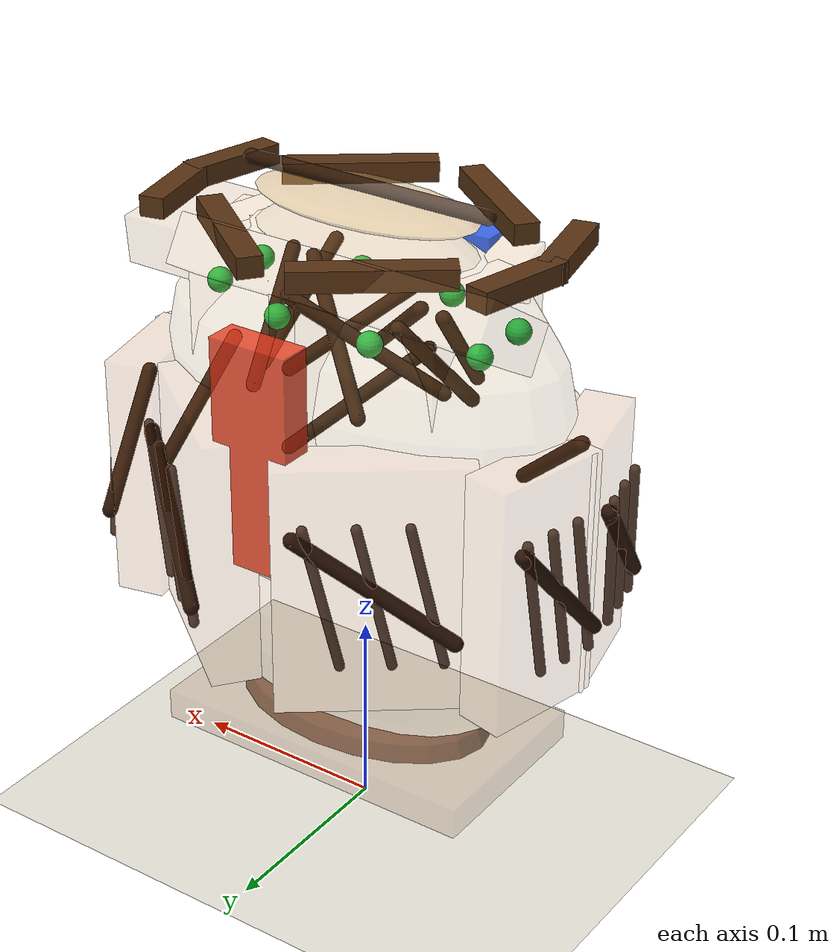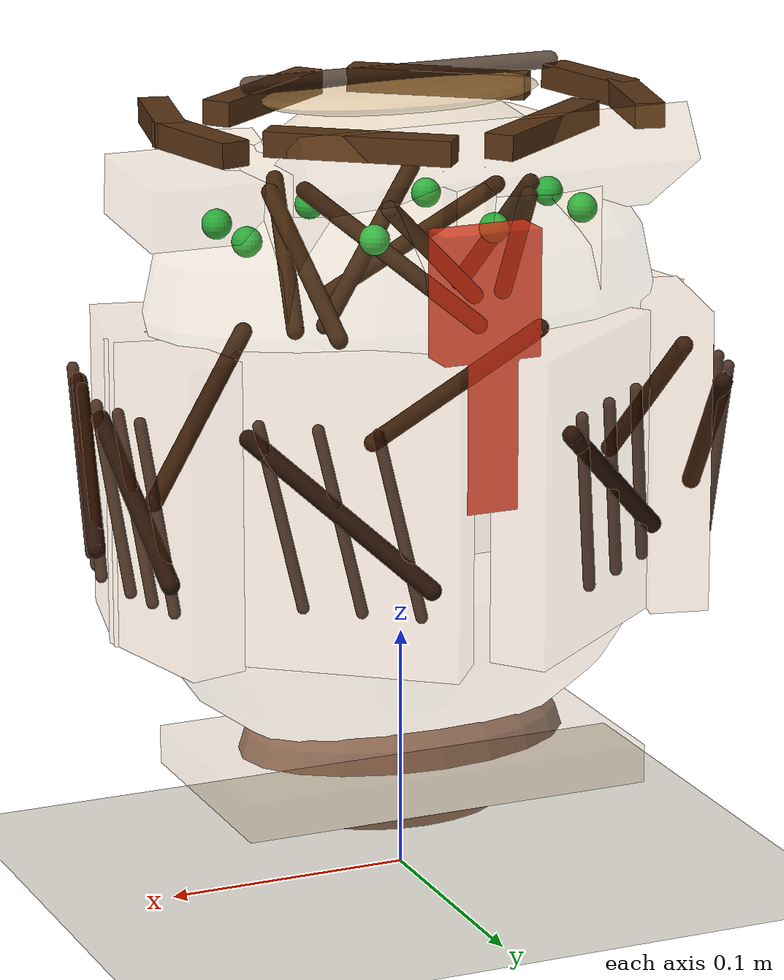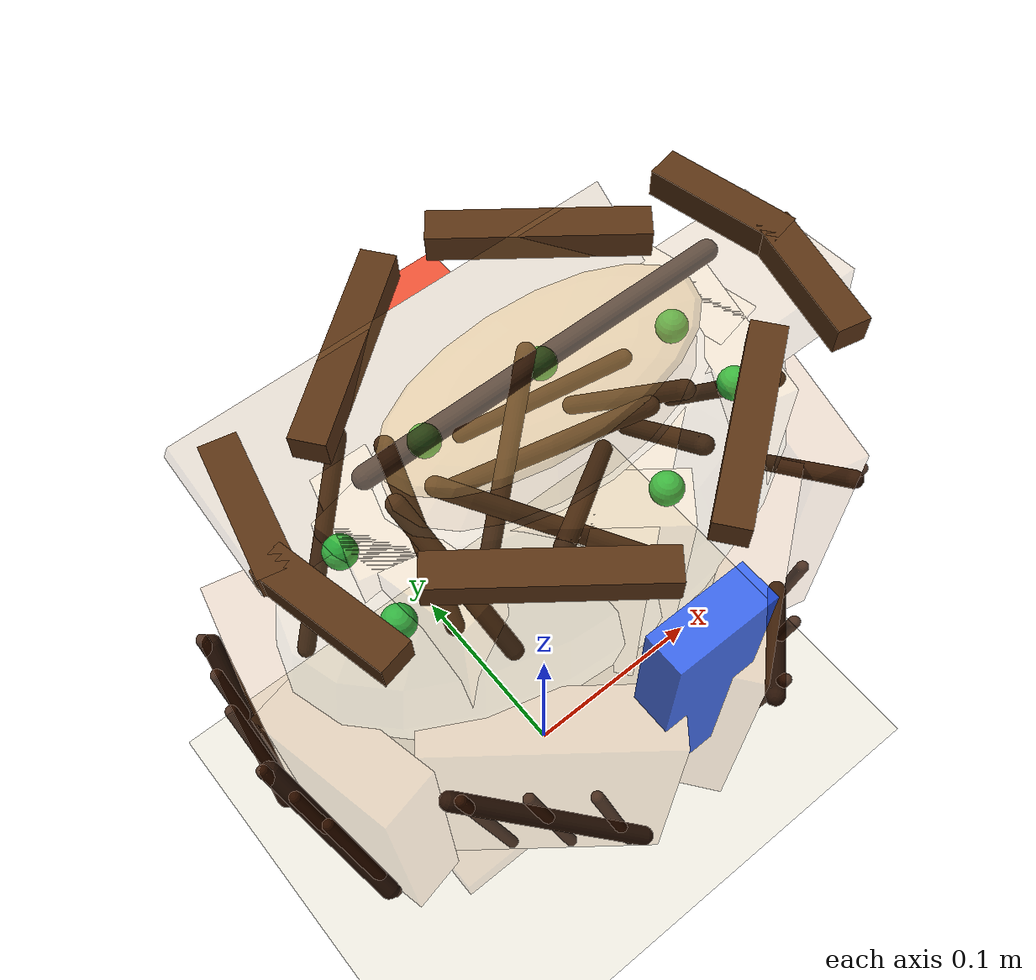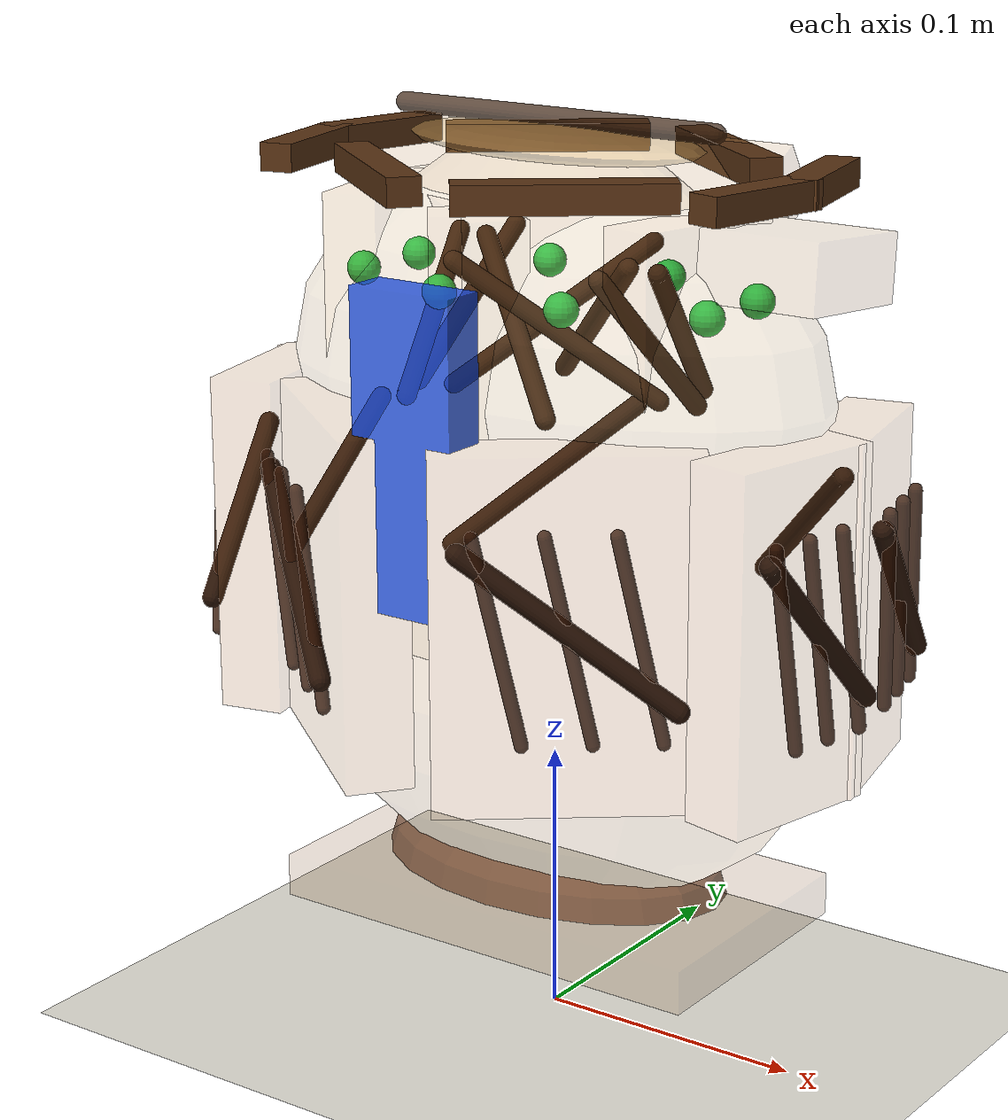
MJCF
<mujoco model="shape_coupled_sack_core_underfilled">
  <compiler angle="degree" autolimits="true" />
  <option timestep="0.001000" gravity="0 0 -9.81" integrator="implicitfast" solver="Newton" iterations="100" ls_iterations="24" jacobian="sparse" cone="elliptic" impratio="4" />
  <size nconmax="900" njmax="1800" />
  <visual>
    <global offwidth="1280" offheight="820" />
  </visual>
  <worldbody>
    <geom friction="1.5 0.05 0.005" condim="4" solref="0.026 1" solimp="0.82 0.96 0.001" name="floor" type="plane" pos="0 0 0" size="2.0 2.0 0.05" rgba="0.91 0.90 0.86 0.18" />
    <light name="key_light" pos="0.4 -0.7 1.5" dir="-0.3 0.4 -1" />
    <camera name="front" pos="0.80 0 0.38" xyaxes="0 1 0 -0.24 0 0.97" />
    <camera name="side" pos="0 -0.78 0.38" xyaxes="1 0 0 0 0.24 0.97" />
    <camera name="overview" pos="0.85 -0.85 0.72" xyaxes="0.72 0.69 0 -0.34 0.35 0.87" />
    <body name="gripper_left_mocap" mocap="true" pos="0 -0.080000 0.230">
      <geom friction="2.3 0.12 0.010" condim="4" solref="0.030 1" solimp="0.78 0.94 0.001" name="gripper_left_mocap_pad" type="box" size="0.020 0.008 0.055" rgba="0.15 0.35 0.95 0.85" />
      <site name="gripper_left_mocap_site" pos="0 0 0" size="0.006" rgba="0.15 0.35 0.95 0.85" />
    </body>
    <body name="gripper_right_mocap" mocap="true" pos="0 0.080000 0.230">
      <geom friction="2.3 0.12 0.010" condim="4" solref="0.030 1" solimp="0.78 0.94 0.001" name="gripper_right_mocap_pad" type="box" size="0.020 0.008 0.055" rgba="0.95 0.25 0.12 0.85" />
      <site name="gripper_right_mocap_site" pos="0 0 0" size="0.006" rgba="0.95 0.25 0.12 0.85" />
    </body>
    <body name="gripper_center_mocap" mocap="true" pos="0 0 0.230">
      <site name="gripper_center_site" pos="0 0 0" size="0.006" rgba="1 1 0 0.8" />
    </body>
    <body name="bag_frame" pos="0 0 0.188">
      <freejoint name="bag_frame_freejoint" />
      <site name="bag_frame_origin" pos="0 0 0" size="0.006" rgba="1 0 0 0.7" />
      <geom friction="1.35 0.08 0.006" condim="4" solref="0.026 1" solimp="0.82 0.96 0.001" name="bag_mouse_handle" type="sphere" pos="0 0 0.020" size="0.020" mass="0.001" rgba="0.10 0.35 1.00 0.24" contype="0" conaffinity="0" />
      <body name="seam_band_00" pos="0.092184 0.020506 0.126000" euler="0 0 102.541136">
        <geom friction="1.35 0.08 0.006" condim="4" solref="0.026 1" solimp="0.82 0.96 0.001" name="seam_band_00_geom" type="box" size="0.024343 0.006000 0.005000" mass="0.016" rgba="0.35 0.20 0.08 0.90" />
        <site name="grasp_seam_00" pos="0 0 0" size="0.005" rgba="1 0.55 0.12 0.90" />
      </body>
      <body name="seam_band_01" pos="0.038184 0.049506 0.126000" euler="0 0 142.357206">
        <geom friction="1.35 0.08 0.006" condim="4" solref="0.026 1" solimp="0.82 0.96 0.001" name="seam_band_01_geom" type="box" size="0.036770 0.006000 0.005000" mass="0.016" rgba="0.35 0.20 0.08 0.90" />
        <site name="grasp_seam_01" pos="0 0 0" size="0.005" rgba="1 0.55 0.12 0.90" />
      </body>
      <body name="seam_band_02" pos="-0.038184 0.049506 0.126000" euler="0 0 217.642794">
        <geom friction="1.35 0.08 0.006" condim="4" solref="0.026 1" solimp="0.82 0.96 0.001" name="seam_band_02_geom" type="box" size="0.036770 0.006000 0.005000" mass="0.016" rgba="0.35 0.20 0.08 0.90" />
        <site name="grasp_seam_02" pos="0 0 0" size="0.005" rgba="1 0.55 0.12 0.90" />
      </body>
      <body name="seam_band_03" pos="-0.092184 0.020506 0.126000" euler="0 0 257.458864">
        <geom friction="1.35 0.08 0.006" condim="4" solref="0.026 1" solimp="0.82 0.96 0.001" name="seam_band_03_geom" type="box" size="0.024343 0.006000 0.005000" mass="0.016" rgba="0.35 0.20 0.08 0.90" />
        <site name="grasp_seam_03" pos="0 0 0" size="0.005" rgba="1 0.55 0.12 0.90" />
      </body>
      <body name="seam_band_04" pos="-0.092184 -0.020506 0.126000" euler="0 0 -77.458864">
        <geom friction="1.35 0.08 0.006" condim="4" solref="0.026 1" solimp="0.82 0.96 0.001" name="seam_band_04_geom" type="box" size="0.024343 0.006000 0.005000" mass="0.016" rgba="0.35 0.20 0.08 0.90" />
        <site name="grasp_seam_04" pos="0 0 0" size="0.005" rgba="1 0.55 0.12 0.90" />
      </body>
      <body name="seam_band_05" pos="-0.038184 -0.049506 0.126000" euler="0 0 -37.642794">
        <geom friction="1.35 0.08 0.006" condim="4" solref="0.026 1" solimp="0.82 0.96 0.001" name="seam_band_05_geom" type="box" size="0.036770 0.006000 0.005000" mass="0.016" rgba="0.35 0.20 0.08 0.90" />
        <site name="grasp_seam_05" pos="0 0 0" size="0.005" rgba="1 0.55 0.12 0.90" />
      </body>
      <body name="seam_band_06" pos="0.038184 -0.049506 0.126000" euler="0 0 37.642794">
        <geom friction="1.35 0.08 0.006" condim="4" solref="0.026 1" solimp="0.82 0.96 0.001" name="seam_band_06_geom" type="box" size="0.036770 0.006000 0.005000" mass="0.016" rgba="0.35 0.20 0.08 0.90" />
        <site name="grasp_seam_06" pos="0 0 0" size="0.005" rgba="1 0.55 0.12 0.90" />
      </body>
      <body name="seam_band_07" pos="0.092184 -0.020506 0.126000" euler="0 0 77.458864">
        <geom friction="1.35 0.08 0.006" condim="4" solref="0.026 1" solimp="0.82 0.96 0.001" name="seam_band_07_geom" type="box" size="0.024343 0.006000 0.005000" mass="0.016" rgba="0.35 0.20 0.08 0.90" />
        <site name="grasp_seam_07" pos="0 0 0" size="0.005" rgba="1 0.55 0.12 0.90" />
      </body>
      <body name="shoulder_panel_00" pos="0.092184 0.020506 0.116000" euler="0 0 102.541136">
        <joint name="shoulder_panel_00_hinge" type="hinge" axis="1 0 0" limited="true" range="-44 52" damping="10.500" stiffness="1.100" />
        <geom friction="1.35 0.08 0.006" condim="4" solref="0.026 1" solimp="0.82 0.96 0.001" name="shoulder_panel_00_geom" type="box" pos="0 0.030000 -0.045000" size="0.029005 0.010000 0.045000" mass="0.030" rgba="0.84 0.58 0.27 0.10" />
        <geom friction="1.35 0.08 0.006" condim="4" solref="0.026 1" solimp="0.82 0.96 0.001" name="shoulder_panel_00_shape_cue" type="capsule" fromto="-0.023307 0.048000 -0.020000 0.023307 0.048000 -0.070000" size="0.0035" mass="0.001" rgba="0.18 0.08 0.02 0.95" contype="0" conaffinity="0" />
        <geom friction="1.35 0.08 0.006" condim="4" solref="0.026 1" solimp="0.82 0.96 0.001" name="shoulder_panel_00_wrinkle_0" type="capsule" fromto="-0.020502 0.050000 -0.018 -0.008502 0.046000 -0.080" size="0.0022" mass="0.0002" rgba="0.24 0.11 0.03 0.82" contype="0" conaffinity="0" />
        <geom friction="1.35 0.08 0.006" condim="4" solref="0.026 1" solimp="0.82 0.96 0.001" name="shoulder_panel_00_wrinkle_1" type="capsule" fromto="-0.006000 0.050000 -0.018 0.006000 0.046000 -0.080" size="0.0022" mass="0.0002" rgba="0.24 0.11 0.03 0.82" contype="0" conaffinity="0" />
        <geom friction="1.35 0.08 0.006" condim="4" solref="0.026 1" solimp="0.82 0.96 0.001" name="shoulder_panel_00_wrinkle_2" type="capsule" fromto="0.008502 0.050000 -0.018 0.020502 0.046000 -0.080" size="0.0022" mass="0.0002" rgba="0.24 0.11 0.03 0.82" contype="0" conaffinity="0" />
        <site name="grasp_shoulder_00" pos="0 0.021000 -0.031500" size="0.006" rgba="0.10 0.75 0.25 0.90" />
      </body>
      <body name="shoulder_panel_01" pos="0.038184 0.049506 0.116000" euler="0 0 142.357206">
        <joint name="shoulder_panel_01_hinge" type="hinge" axis="1 0 0" limited="true" range="-44 52" damping="10.500" stiffness="1.100" />
        <geom friction="1.35 0.08 0.006" condim="4" solref="0.026 1" solimp="0.82 0.96 0.001" name="shoulder_panel_01_geom" type="box" pos="0 0.030000 -0.045000" size="0.043811 0.010000 0.045000" mass="0.030" rgba="0.84 0.58 0.27 0.10" />
        <geom friction="1.35 0.08 0.006" condim="4" solref="0.026 1" solimp="0.82 0.96 0.001" name="shoulder_panel_01_shape_cue" type="capsule" fromto="-0.035205 0.048000 -0.020000 0.035205 0.048000 -0.070000" size="0.0035" mass="0.001" rgba="0.18 0.08 0.02 0.95" contype="0" conaffinity="0" />
        <geom friction="1.35 0.08 0.006" condim="4" solref="0.026 1" solimp="0.82 0.96 0.001" name="shoulder_panel_01_wrinkle_0" type="capsule" fromto="-0.027906 0.050000 -0.018 -0.015906 0.046000 -0.080" size="0.0022" mass="0.0002" rgba="0.24 0.11 0.03 0.82" contype="0" conaffinity="0" />
        <geom friction="1.35 0.08 0.006" condim="4" solref="0.026 1" solimp="0.82 0.96 0.001" name="shoulder_panel_01_wrinkle_1" type="capsule" fromto="-0.006000 0.050000 -0.018 0.006000 0.046000 -0.080" size="0.0022" mass="0.0002" rgba="0.24 0.11 0.03 0.82" contype="0" conaffinity="0" />
        <geom friction="1.35 0.08 0.006" condim="4" solref="0.026 1" solimp="0.82 0.96 0.001" name="shoulder_panel_01_wrinkle_2" type="capsule" fromto="0.015906 0.050000 -0.018 0.027906 0.046000 -0.080" size="0.0022" mass="0.0002" rgba="0.24 0.11 0.03 0.82" contype="0" conaffinity="0" />
        <site name="grasp_shoulder_01" pos="0 0.021000 -0.031500" size="0.006" rgba="0.10 0.75 0.25 0.90" />
      </body>
      <body name="shoulder_panel_02" pos="-0.038184 0.049506 0.116000" euler="0 0 217.642794">
        <joint name="shoulder_panel_02_hinge" type="hinge" axis="1 0 0" limited="true" range="-44 52" damping="10.500" stiffness="1.100" />
        <geom friction="1.35 0.08 0.006" condim="4" solref="0.026 1" solimp="0.82 0.96 0.001" name="shoulder_panel_02_geom" type="box" pos="0 0.030000 -0.045000" size="0.043811 0.010000 0.045000" mass="0.030" rgba="0.84 0.58 0.27 0.10" />
        <geom friction="1.35 0.08 0.006" condim="4" solref="0.026 1" solimp="0.82 0.96 0.001" name="shoulder_panel_02_shape_cue" type="capsule" fromto="-0.035205 0.048000 -0.020000 0.035205 0.048000 -0.070000" size="0.0035" mass="0.001" rgba="0.18 0.08 0.02 0.95" contype="0" conaffinity="0" />
        <geom friction="1.35 0.08 0.006" condim="4" solref="0.026 1" solimp="0.82 0.96 0.001" name="shoulder_panel_02_wrinkle_0" type="capsule" fromto="-0.027906 0.050000 -0.018 -0.015906 0.046000 -0.080" size="0.0022" mass="0.0002" rgba="0.24 0.11 0.03 0.82" contype="0" conaffinity="0" />
        <geom friction="1.35 0.08 0.006" condim="4" solref="0.026 1" solimp="0.82 0.96 0.001" name="shoulder_panel_02_wrinkle_1" type="capsule" fromto="-0.006000 0.050000 -0.018 0.006000 0.046000 -0.080" size="0.0022" mass="0.0002" rgba="0.24 0.11 0.03 0.82" contype="0" conaffinity="0" />
        <geom friction="1.35 0.08 0.006" condim="4" solref="0.026 1" solimp="0.82 0.96 0.001" name="shoulder_panel_02_wrinkle_2" type="capsule" fromto="0.015906 0.050000 -0.018 0.027906 0.046000 -0.080" size="0.0022" mass="0.0002" rgba="0.24 0.11 0.03 0.82" contype="0" conaffinity="0" />
        <site name="grasp_shoulder_02" pos="0 0.021000 -0.031500" size="0.006" rgba="0.10 0.75 0.25 0.90" />
      </body>
      <body name="shoulder_panel_03" pos="-0.092184 0.020506 0.116000" euler="0 0 257.458864">
        <joint name="shoulder_panel_03_hinge" type="hinge" axis="1 0 0" limited="true" range="-44 52" damping="10.500" stiffness="1.100" />
        <geom friction="1.35 0.08 0.006" condim="4" solref="0.026 1" solimp="0.82 0.96 0.001" name="shoulder_panel_03_geom" type="box" pos="0 0.030000 -0.045000" size="0.029005 0.010000 0.045000" mass="0.030" rgba="0.84 0.58 0.27 0.10" />
        <geom friction="1.35 0.08 0.006" condim="4" solref="0.026 1" solimp="0.82 0.96 0.001" name="shoulder_panel_03_shape_cue" type="capsule" fromto="-0.023307 0.048000 -0.020000 0.023307 0.048000 -0.070000" size="0.0035" mass="0.001" rgba="0.18 0.08 0.02 0.95" contype="0" conaffinity="0" />
        <geom friction="1.35 0.08 0.006" condim="4" solref="0.026 1" solimp="0.82 0.96 0.001" name="shoulder_panel_03_wrinkle_0" type="capsule" fromto="-0.020502 0.050000 -0.018 -0.008502 0.046000 -0.080" size="0.0022" mass="0.0002" rgba="0.24 0.11 0.03 0.82" contype="0" conaffinity="0" />
        <geom friction="1.35 0.08 0.006" condim="4" solref="0.026 1" solimp="0.82 0.96 0.001" name="shoulder_panel_03_wrinkle_1" type="capsule" fromto="-0.006000 0.050000 -0.018 0.006000 0.046000 -0.080" size="0.0022" mass="0.0002" rgba="0.24 0.11 0.03 0.82" contype="0" conaffinity="0" />
        <geom friction="1.35 0.08 0.006" condim="4" solref="0.026 1" solimp="0.82 0.96 0.001" name="shoulder_panel_03_wrinkle_2" type="capsule" fromto="0.008502 0.050000 -0.018 0.020502 0.046000 -0.080" size="0.0022" mass="0.0002" rgba="0.24 0.11 0.03 0.82" contype="0" conaffinity="0" />
        <site name="grasp_shoulder_03" pos="0 0.021000 -0.031500" size="0.006" rgba="0.10 0.75 0.25 0.90" />
      </body>
      <body name="shoulder_panel_04" pos="-0.092184 -0.020506 0.116000" euler="0 0 -77.458864">
        <joint name="shoulder_panel_04_hinge" type="hinge" axis="1 0 0" limited="true" range="-44 52" damping="10.500" stiffness="1.100" />
        <geom friction="1.35 0.08 0.006" condim="4" solref="0.026 1" solimp="0.82 0.96 0.001" name="shoulder_panel_04_geom" type="box" pos="0 0.030000 -0.045000" size="0.029005 0.010000 0.045000" mass="0.030" rgba="0.84 0.58 0.27 0.10" />
        <geom friction="1.35 0.08 0.006" condim="4" solref="0.026 1" solimp="0.82 0.96 0.001" name="shoulder_panel_04_shape_cue" type="capsule" fromto="-0.023307 0.048000 -0.020000 0.023307 0.048000 -0.070000" size="0.0035" mass="0.001" rgba="0.18 0.08 0.02 0.95" contype="0" conaffinity="0" />
        <geom friction="1.35 0.08 0.006" condim="4" solref="0.026 1" solimp="0.82 0.96 0.001" name="shoulder_panel_04_wrinkle_0" type="capsule" fromto="-0.020502 0.050000 -0.018 -0.008502 0.046000 -0.080" size="0.0022" mass="0.0002" rgba="0.24 0.11 0.03 0.82" contype="0" conaffinity="0" />
        <geom friction="1.35 0.08 0.006" condim="4" solref="0.026 1" solimp="0.82 0.96 0.001" name="shoulder_panel_04_wrinkle_1" type="capsule" fromto="-0.006000 0.050000 -0.018 0.006000 0.046000 -0.080" size="0.0022" mass="0.0002" rgba="0.24 0.11 0.03 0.82" contype="0" conaffinity="0" />
        <geom friction="1.35 0.08 0.006" condim="4" solref="0.026 1" solimp="0.82 0.96 0.001" name="shoulder_panel_04_wrinkle_2" type="capsule" fromto="0.008502 0.050000 -0.018 0.020502 0.046000 -0.080" size="0.0022" mass="0.0002" rgba="0.24 0.11 0.03 0.82" contype="0" conaffinity="0" />
        <site name="grasp_shoulder_04" pos="0 0.021000 -0.031500" size="0.006" rgba="0.10 0.75 0.25 0.90" />
      </body>
      <body name="shoulder_panel_05" pos="-0.038184 -0.049506 0.116000" euler="0 0 -37.642794">
        <joint name="shoulder_panel_05_hinge" type="hinge" axis="1 0 0" limited="true" range="-44 52" damping="10.500" stiffness="1.100" />
        <geom friction="1.35 0.08 0.006" condim="4" solref="0.026 1" solimp="0.82 0.96 0.001" name="shoulder_panel_05_geom" type="box" pos="0 0.030000 -0.045000" size="0.043811 0.010000 0.045000" mass="0.030" rgba="0.84 0.58 0.27 0.10" />
        <geom friction="1.35 0.08 0.006" condim="4" solref="0.026 1" solimp="0.82 0.96 0.001" name="shoulder_panel_05_shape_cue" type="capsule" fromto="-0.035205 0.048000 -0.020000 0.035205 0.048000 -0.070000" size="0.0035" mass="0.001" rgba="0.18 0.08 0.02 0.95" contype="0" conaffinity="0" />
        <geom friction="1.35 0.08 0.006" condim="4" solref="0.026 1" solimp="0.82 0.96 0.001" name="shoulder_panel_05_wrinkle_0" type="capsule" fromto="-0.027906 0.050000 -0.018 -0.015906 0.046000 -0.080" size="0.0022" mass="0.0002" rgba="0.24 0.11 0.03 0.82" contype="0" conaffinity="0" />
        <geom friction="1.35 0.08 0.006" condim="4" solref="0.026 1" solimp="0.82 0.96 0.001" name="shoulder_panel_05_wrinkle_1" type="capsule" fromto="-0.006000 0.050000 -0.018 0.006000 0.046000 -0.080" size="0.0022" mass="0.0002" rgba="0.24 0.11 0.03 0.82" contype="0" conaffinity="0" />
        <geom friction="1.35 0.08 0.006" condim="4" solref="0.026 1" solimp="0.82 0.96 0.001" name="shoulder_panel_05_wrinkle_2" type="capsule" fromto="0.015906 0.050000 -0.018 0.027906 0.046000 -0.080" size="0.0022" mass="0.0002" rgba="0.24 0.11 0.03 0.82" contype="0" conaffinity="0" />
        <site name="grasp_shoulder_05" pos="0 0.021000 -0.031500" size="0.006" rgba="0.10 0.75 0.25 0.90" />
      </body>
      <body name="shoulder_panel_06" pos="0.038184 -0.049506 0.116000" euler="0 0 37.642794">
        <joint name="shoulder_panel_06_hinge" type="hinge" axis="1 0 0" limited="true" range="-44 52" damping="10.500" stiffness="1.100" />
        <geom friction="1.35 0.08 0.006" condim="4" solref="0.026 1" solimp="0.82 0.96 0.001" name="shoulder_panel_06_geom" type="box" pos="0 0.030000 -0.045000" size="0.043811 0.010000 0.045000" mass="0.030" rgba="0.84 0.58 0.27 0.10" />
        <geom friction="1.35 0.08 0.006" condim="4" solref="0.026 1" solimp="0.82 0.96 0.001" name="shoulder_panel_06_shape_cue" type="capsule" fromto="-0.035205 0.048000 -0.020000 0.035205 0.048000 -0.070000" size="0.0035" mass="0.001" rgba="0.18 0.08 0.02 0.95" contype="0" conaffinity="0" />
        <geom friction="1.35 0.08 0.006" condim="4" solref="0.026 1" solimp="0.82 0.96 0.001" name="shoulder_panel_06_wrinkle_0" type="capsule" fromto="-0.027906 0.050000 -0.018 -0.015906 0.046000 -0.080" size="0.0022" mass="0.0002" rgba="0.24 0.11 0.03 0.82" contype="0" conaffinity="0" />
        <geom friction="1.35 0.08 0.006" condim="4" solref="0.026 1" solimp="0.82 0.96 0.001" name="shoulder_panel_06_wrinkle_1" type="capsule" fromto="-0.006000 0.050000 -0.018 0.006000 0.046000 -0.080" size="0.0022" mass="0.0002" rgba="0.24 0.11 0.03 0.82" contype="0" conaffinity="0" />
        <geom friction="1.35 0.08 0.006" condim="4" solref="0.026 1" solimp="0.82 0.96 0.001" name="shoulder_panel_06_wrinkle_2" type="capsule" fromto="0.015906 0.050000 -0.018 0.027906 0.046000 -0.080" size="0.0022" mass="0.0002" rgba="0.24 0.11 0.03 0.82" contype="0" conaffinity="0" />
        <site name="grasp_shoulder_06" pos="0 0.021000 -0.031500" size="0.006" rgba="0.10 0.75 0.25 0.90" />
      </body>
      <body name="shoulder_panel_07" pos="0.092184 -0.020506 0.116000" euler="0 0 77.458864">
        <joint name="shoulder_panel_07_hinge" type="hinge" axis="1 0 0" limited="true" range="-44 52" damping="10.500" stiffness="1.100" />
        <geom friction="1.35 0.08 0.006" condim="4" solref="0.026 1" solimp="0.82 0.96 0.001" name="shoulder_panel_07_geom" type="box" pos="0 0.030000 -0.045000" size="0.029005 0.010000 0.045000" mass="0.030" rgba="0.84 0.58 0.27 0.10" />
        <geom friction="1.35 0.08 0.006" condim="4" solref="0.026 1" solimp="0.82 0.96 0.001" name="shoulder_panel_07_shape_cue" type="capsule" fromto="-0.023307 0.048000 -0.020000 0.023307 0.048000 -0.070000" size="0.0035" mass="0.001" rgba="0.18 0.08 0.02 0.95" contype="0" conaffinity="0" />
        <geom friction="1.35 0.08 0.006" condim="4" solref="0.026 1" solimp="0.82 0.96 0.001" name="shoulder_panel_07_wrinkle_0" type="capsule" fromto="-0.020502 0.050000 -0.018 -0.008502 0.046000 -0.080" size="0.0022" mass="0.0002" rgba="0.24 0.11 0.03 0.82" contype="0" conaffinity="0" />
        <geom friction="1.35 0.08 0.006" condim="4" solref="0.026 1" solimp="0.82 0.96 0.001" name="shoulder_panel_07_wrinkle_1" type="capsule" fromto="-0.006000 0.050000 -0.018 0.006000 0.046000 -0.080" size="0.0022" mass="0.0002" rgba="0.24 0.11 0.03 0.82" contype="0" conaffinity="0" />
        <geom friction="1.35 0.08 0.006" condim="4" solref="0.026 1" solimp="0.82 0.96 0.001" name="shoulder_panel_07_wrinkle_2" type="capsule" fromto="0.008502 0.050000 -0.018 0.020502 0.046000 -0.080" size="0.0022" mass="0.0002" rgba="0.24 0.11 0.03 0.82" contype="0" conaffinity="0" />
        <site name="grasp_shoulder_07" pos="0 0.021000 -0.031500" size="0.006" rgba="0.10 0.75 0.25 0.90" />
      </body>
      <body name="belly_panel_00" pos="0.092184 0.020506 0.046800" euler="0 0 102.541136">
        <joint name="belly_panel_00_hinge" type="hinge" axis="1 0 0" limited="true" range="-54 64" damping="11.000" stiffness="1.700" />
        <geom friction="1.35 0.08 0.006" condim="4" solref="0.026 1" solimp="0.82 0.96 0.001" name="belly_panel_00_geom" type="box" pos="0 -0.014000 -0.062000" size="0.030040 0.012000 0.062000" mass="0.038" rgba="0.70 0.42 0.18 0.10" />
        <geom friction="1.35 0.08 0.006" condim="4" solref="0.026 1" solimp="0.82 0.96 0.001" name="belly_panel_00_shape_cue" type="capsule" fromto="-0.023825 -0.032000 -0.030000 0.023825 -0.032000 -0.085000" size="0.0038" mass="0.001" rgba="0.16 0.07 0.02 0.96" contype="0" conaffinity="0" />
        <geom friction="1.35 0.08 0.006" condim="4" solref="0.026 1" solimp="0.82 0.96 0.001" name="belly_panel_00_wrinkle_0" type="capsule" fromto="-0.023538 -0.034000 -0.024 -0.007538 -0.030000 -0.096720" size="0.0024" mass="0.0002" rgba="0.22 0.09 0.02 0.84" contype="0" conaffinity="0" />
        <geom friction="1.35 0.08 0.006" condim="4" solref="0.026 1" solimp="0.82 0.96 0.001" name="belly_panel_00_wrinkle_1" type="capsule" fromto="-0.008000 -0.034000 -0.024 0.008000 -0.030000 -0.096720" size="0.0024" mass="0.0002" rgba="0.22 0.09 0.02 0.84" contype="0" conaffinity="0" />
        <geom friction="1.35 0.08 0.006" condim="4" solref="0.026 1" solimp="0.82 0.96 0.001" name="belly_panel_00_wrinkle_2" type="capsule" fromto="0.007538 -0.034000 -0.024 0.023538 -0.030000 -0.096720" size="0.0024" mass="0.0002" rgba="0.22 0.09 0.02 0.84" contype="0" conaffinity="0" />
      </body>
      <body name="belly_panel_01" pos="0.038184 0.049506 0.046800" euler="0 0 142.357206">
        <joint name="belly_panel_01_hinge" type="hinge" axis="1 0 0" limited="true" range="-54 64" damping="11.000" stiffness="1.700" />
        <geom friction="1.35 0.08 0.006" condim="4" solref="0.026 1" solimp="0.82 0.96 0.001" name="belly_panel_01_geom" type="box" pos="0 -0.014000 -0.062000" size="0.045376 0.012000 0.062000" mass="0.038" rgba="0.70 0.42 0.18 0.10" />
        <geom friction="1.35 0.08 0.006" condim="4" solref="0.026 1" solimp="0.82 0.96 0.001" name="belly_panel_01_shape_cue" type="capsule" fromto="-0.035988 -0.032000 -0.030000 0.035988 -0.032000 -0.085000" size="0.0038" mass="0.001" rgba="0.16 0.07 0.02 0.96" contype="0" conaffinity="0" />
        <geom friction="1.35 0.08 0.006" condim="4" solref="0.026 1" solimp="0.82 0.96 0.001" name="belly_panel_01_wrinkle_0" type="capsule" fromto="-0.031470 -0.034000 -0.024 -0.015470 -0.030000 -0.096720" size="0.0024" mass="0.0002" rgba="0.22 0.09 0.02 0.84" contype="0" conaffinity="0" />
        <geom friction="1.35 0.08 0.006" condim="4" solref="0.026 1" solimp="0.82 0.96 0.001" name="belly_panel_01_wrinkle_1" type="capsule" fromto="-0.008000 -0.034000 -0.024 0.008000 -0.030000 -0.096720" size="0.0024" mass="0.0002" rgba="0.22 0.09 0.02 0.84" contype="0" conaffinity="0" />
        <geom friction="1.35 0.08 0.006" condim="4" solref="0.026 1" solimp="0.82 0.96 0.001" name="belly_panel_01_wrinkle_2" type="capsule" fromto="0.015470 -0.034000 -0.024 0.031470 -0.030000 -0.096720" size="0.0024" mass="0.0002" rgba="0.22 0.09 0.02 0.84" contype="0" conaffinity="0" />
      </body>
      <body name="belly_panel_02" pos="-0.038184 0.049506 0.046800" euler="0 0 217.642794">
        <joint name="belly_panel_02_hinge" type="hinge" axis="1 0 0" limited="true" range="-54 64" damping="11.000" stiffness="1.700" />
        <geom friction="1.35 0.08 0.006" condim="4" solref="0.026 1" solimp="0.82 0.96 0.001" name="belly_panel_02_geom" type="box" pos="0 -0.014000 -0.062000" size="0.045376 0.012000 0.062000" mass="0.038" rgba="0.70 0.42 0.18 0.10" />
        <geom friction="1.35 0.08 0.006" condim="4" solref="0.026 1" solimp="0.82 0.96 0.001" name="belly_panel_02_shape_cue" type="capsule" fromto="-0.035988 -0.032000 -0.030000 0.035988 -0.032000 -0.085000" size="0.0038" mass="0.001" rgba="0.16 0.07 0.02 0.96" contype="0" conaffinity="0" />
        <geom friction="1.35 0.08 0.006" condim="4" solref="0.026 1" solimp="0.82 0.96 0.001" name="belly_panel_02_wrinkle_0" type="capsule" fromto="-0.031470 -0.034000 -0.024 -0.015470 -0.030000 -0.096720" size="0.0024" mass="0.0002" rgba="0.22 0.09 0.02 0.84" contype="0" conaffinity="0" />
        <geom friction="1.35 0.08 0.006" condim="4" solref="0.026 1" solimp="0.82 0.96 0.001" name="belly_panel_02_wrinkle_1" type="capsule" fromto="-0.008000 -0.034000 -0.024 0.008000 -0.030000 -0.096720" size="0.0024" mass="0.0002" rgba="0.22 0.09 0.02 0.84" contype="0" conaffinity="0" />
        <geom friction="1.35 0.08 0.006" condim="4" solref="0.026 1" solimp="0.82 0.96 0.001" name="belly_panel_02_wrinkle_2" type="capsule" fromto="0.015470 -0.034000 -0.024 0.031470 -0.030000 -0.096720" size="0.0024" mass="0.0002" rgba="0.22 0.09 0.02 0.84" contype="0" conaffinity="0" />
      </body>
      <body name="belly_panel_03" pos="-0.092184 0.020506 0.046800" euler="0 0 257.458864">
        <joint name="belly_panel_03_hinge" type="hinge" axis="1 0 0" limited="true" range="-54 64" damping="11.000" stiffness="1.700" />
        <geom friction="1.35 0.08 0.006" condim="4" solref="0.026 1" solimp="0.82 0.96 0.001" name="belly_panel_03_geom" type="box" pos="0 -0.014000 -0.062000" size="0.030040 0.012000 0.062000" mass="0.038" rgba="0.70 0.42 0.18 0.10" />
        <geom friction="1.35 0.08 0.006" condim="4" solref="0.026 1" solimp="0.82 0.96 0.001" name="belly_panel_03_shape_cue" type="capsule" fromto="-0.023825 -0.032000 -0.030000 0.023825 -0.032000 -0.085000" size="0.0038" mass="0.001" rgba="0.16 0.07 0.02 0.96" contype="0" conaffinity="0" />
        <geom friction="1.35 0.08 0.006" condim="4" solref="0.026 1" solimp="0.82 0.96 0.001" name="belly_panel_03_wrinkle_0" type="capsule" fromto="-0.023538 -0.034000 -0.024 -0.007538 -0.030000 -0.096720" size="0.0024" mass="0.0002" rgba="0.22 0.09 0.02 0.84" contype="0" conaffinity="0" />
        <geom friction="1.35 0.08 0.006" condim="4" solref="0.026 1" solimp="0.82 0.96 0.001" name="belly_panel_03_wrinkle_1" type="capsule" fromto="-0.008000 -0.034000 -0.024 0.008000 -0.030000 -0.096720" size="0.0024" mass="0.0002" rgba="0.22 0.09 0.02 0.84" contype="0" conaffinity="0" />
        <geom friction="1.35 0.08 0.006" condim="4" solref="0.026 1" solimp="0.82 0.96 0.001" name="belly_panel_03_wrinkle_2" type="capsule" fromto="0.007538 -0.034000 -0.024 0.023538 -0.030000 -0.096720" size="0.0024" mass="0.0002" rgba="0.22 0.09 0.02 0.84" contype="0" conaffinity="0" />
      </body>
      <body name="belly_panel_04" pos="-0.092184 -0.020506 0.046800" euler="0 0 -77.458864">
        <joint name="belly_panel_04_hinge" type="hinge" axis="1 0 0" limited="true" range="-54 64" damping="11.000" stiffness="1.700" />
        <geom friction="1.35 0.08 0.006" condim="4" solref="0.026 1" solimp="0.82 0.96 0.001" name="belly_panel_04_geom" type="box" pos="0 -0.014000 -0.062000" size="0.030040 0.012000 0.062000" mass="0.038" rgba="0.70 0.42 0.18 0.10" />
        <geom friction="1.35 0.08 0.006" condim="4" solref="0.026 1" solimp="0.82 0.96 0.001" name="belly_panel_04_shape_cue" type="capsule" fromto="-0.023825 -0.032000 -0.030000 0.023825 -0.032000 -0.085000" size="0.0038" mass="0.001" rgba="0.16 0.07 0.02 0.96" contype="0" conaffinity="0" />
        <geom friction="1.35 0.08 0.006" condim="4" solref="0.026 1" solimp="0.82 0.96 0.001" name="belly_panel_04_wrinkle_0" type="capsule" fromto="-0.023538 -0.034000 -0.024 -0.007538 -0.030000 -0.096720" size="0.0024" mass="0.0002" rgba="0.22 0.09 0.02 0.84" contype="0" conaffinity="0" />
        <geom friction="1.35 0.08 0.006" condim="4" solref="0.026 1" solimp="0.82 0.96 0.001" name="belly_panel_04_wrinkle_1" type="capsule" fromto="-0.008000 -0.034000 -0.024 0.008000 -0.030000 -0.096720" size="0.0024" mass="0.0002" rgba="0.22 0.09 0.02 0.84" contype="0" conaffinity="0" />
        <geom friction="1.35 0.08 0.006" condim="4" solref="0.026 1" solimp="0.82 0.96 0.001" name="belly_panel_04_wrinkle_2" type="capsule" fromto="0.007538 -0.034000 -0.024 0.023538 -0.030000 -0.096720" size="0.0024" mass="0.0002" rgba="0.22 0.09 0.02 0.84" contype="0" conaffinity="0" />
      </body>
      <body name="belly_panel_05" pos="-0.038184 -0.049506 0.046800" euler="0 0 -37.642794">
        <joint name="belly_panel_05_hinge" type="hinge" axis="1 0 0" limited="true" range="-54 64" damping="11.000" stiffness="1.700" />
        <geom friction="1.35 0.08 0.006" condim="4" solref="0.026 1" solimp="0.82 0.96 0.001" name="belly_panel_05_geom" type="box" pos="0 -0.014000 -0.062000" size="0.045376 0.012000 0.062000" mass="0.038" rgba="0.70 0.42 0.18 0.10" />
        <geom friction="1.35 0.08 0.006" condim="4" solref="0.026 1" solimp="0.82 0.96 0.001" name="belly_panel_05_shape_cue" type="capsule" fromto="-0.035988 -0.032000 -0.030000 0.035988 -0.032000 -0.085000" size="0.0038" mass="0.001" rgba="0.16 0.07 0.02 0.96" contype="0" conaffinity="0" />
        <geom friction="1.35 0.08 0.006" condim="4" solref="0.026 1" solimp="0.82 0.96 0.001" name="belly_panel_05_wrinkle_0" type="capsule" fromto="-0.031470 -0.034000 -0.024 -0.015470 -0.030000 -0.096720" size="0.0024" mass="0.0002" rgba="0.22 0.09 0.02 0.84" contype="0" conaffinity="0" />
        <geom friction="1.35 0.08 0.006" condim="4" solref="0.026 1" solimp="0.82 0.96 0.001" name="belly_panel_05_wrinkle_1" type="capsule" fromto="-0.008000 -0.034000 -0.024 0.008000 -0.030000 -0.096720" size="0.0024" mass="0.0002" rgba="0.22 0.09 0.02 0.84" contype="0" conaffinity="0" />
        <geom friction="1.35 0.08 0.006" condim="4" solref="0.026 1" solimp="0.82 0.96 0.001" name="belly_panel_05_wrinkle_2" type="capsule" fromto="0.015470 -0.034000 -0.024 0.031470 -0.030000 -0.096720" size="0.0024" mass="0.0002" rgba="0.22 0.09 0.02 0.84" contype="0" conaffinity="0" />
      </body>
      <body name="belly_panel_06" pos="0.038184 -0.049506 0.046800" euler="0 0 37.642794">
        <joint name="belly_panel_06_hinge" type="hinge" axis="1 0 0" limited="true" range="-54 64" damping="11.000" stiffness="1.700" />
        <geom friction="1.35 0.08 0.006" condim="4" solref="0.026 1" solimp="0.82 0.96 0.001" name="belly_panel_06_geom" type="box" pos="0 -0.014000 -0.062000" size="0.045376 0.012000 0.062000" mass="0.038" rgba="0.70 0.42 0.18 0.10" />
        <geom friction="1.35 0.08 0.006" condim="4" solref="0.026 1" solimp="0.82 0.96 0.001" name="belly_panel_06_shape_cue" type="capsule" fromto="-0.035988 -0.032000 -0.030000 0.035988 -0.032000 -0.085000" size="0.0038" mass="0.001" rgba="0.16 0.07 0.02 0.96" contype="0" conaffinity="0" />
        <geom friction="1.35 0.08 0.006" condim="4" solref="0.026 1" solimp="0.82 0.96 0.001" name="belly_panel_06_wrinkle_0" type="capsule" fromto="-0.031470 -0.034000 -0.024 -0.015470 -0.030000 -0.096720" size="0.0024" mass="0.0002" rgba="0.22 0.09 0.02 0.84" contype="0" conaffinity="0" />
        <geom friction="1.35 0.08 0.006" condim="4" solref="0.026 1" solimp="0.82 0.96 0.001" name="belly_panel_06_wrinkle_1" type="capsule" fromto="-0.008000 -0.034000 -0.024 0.008000 -0.030000 -0.096720" size="0.0024" mass="0.0002" rgba="0.22 0.09 0.02 0.84" contype="0" conaffinity="0" />
        <geom friction="1.35 0.08 0.006" condim="4" solref="0.026 1" solimp="0.82 0.96 0.001" name="belly_panel_06_wrinkle_2" type="capsule" fromto="0.015470 -0.034000 -0.024 0.031470 -0.030000 -0.096720" size="0.0024" mass="0.0002" rgba="0.22 0.09 0.02 0.84" contype="0" conaffinity="0" />
      </body>
      <body name="belly_panel_07" pos="0.092184 -0.020506 0.046800" euler="0 0 77.458864">
        <joint name="belly_panel_07_hinge" type="hinge" axis="1 0 0" limited="true" range="-54 64" damping="11.000" stiffness="1.700" />
        <geom friction="1.35 0.08 0.006" condim="4" solref="0.026 1" solimp="0.82 0.96 0.001" name="belly_panel_07_geom" type="box" pos="0 -0.014000 -0.062000" size="0.030040 0.012000 0.062000" mass="0.038" rgba="0.70 0.42 0.18 0.10" />
        <geom friction="1.35 0.08 0.006" condim="4" solref="0.026 1" solimp="0.82 0.96 0.001" name="belly_panel_07_shape_cue" type="capsule" fromto="-0.023825 -0.032000 -0.030000 0.023825 -0.032000 -0.085000" size="0.0038" mass="0.001" rgba="0.16 0.07 0.02 0.96" contype="0" conaffinity="0" />
        <geom friction="1.35 0.08 0.006" condim="4" solref="0.026 1" solimp="0.82 0.96 0.001" name="belly_panel_07_wrinkle_0" type="capsule" fromto="-0.023538 -0.034000 -0.024 -0.007538 -0.030000 -0.096720" size="0.0024" mass="0.0002" rgba="0.22 0.09 0.02 0.84" contype="0" conaffinity="0" />
        <geom friction="1.35 0.08 0.006" condim="4" solref="0.026 1" solimp="0.82 0.96 0.001" name="belly_panel_07_wrinkle_1" type="capsule" fromto="-0.008000 -0.034000 -0.024 0.008000 -0.030000 -0.096720" size="0.0024" mass="0.0002" rgba="0.22 0.09 0.02 0.84" contype="0" conaffinity="0" />
        <geom friction="1.35 0.08 0.006" condim="4" solref="0.026 1" solimp="0.82 0.96 0.001" name="belly_panel_07_wrinkle_2" type="capsule" fromto="0.007538 -0.034000 -0.024 0.023538 -0.030000 -0.096720" size="0.0024" mass="0.0002" rgba="0.22 0.09 0.02 0.84" contype="0" conaffinity="0" />
      </body>
      <body name="bottom_sling" pos="0 0 -0.141000">
        <joint name="bottom_sling_sag" type="slide" axis="0 0 1" limited="true" range="-0.020000 0.015000" damping="12.000" stiffness="2.000" />
        <geom friction="1.35 0.08 0.006" condim="4" solref="0.026 1" solimp="0.82 0.96 0.001" name="bottom_sling_pad" type="box" size="0.086 0.050 0.008" mass="0.070" rgba="0.55 0.33 0.14 0.10" />
        <site name="bottom_sling_site" pos="0 0 0" size="0.005" rgba="0.8 0.35 0.08 0.8" />
      </body>
      <body name="fold_root_flap_1" pos="-0.018000 0.030000 0.138000" euler="-58.000000 0 0">
        <joint name="fold_root_flap_1_hinge" type="hinge" axis="1 0 0" limited="true" range="-125 22" damping="8.0" stiffness="2.8" />
        <geom friction="1.35 0.08 0.006" condim="4" solref="0.026 1" solimp="0.82 0.96 0.001" name="fold_root_flap_1_geom" type="box" pos="0 0.028 -0.012" size="0.081697 0.012000 0.026000" mass="0.001" rgba="0.70 0.50 0.27 0.04" contype="0" conaffinity="0" />
        <site name="grasp_fold_1" pos="0 0.028 -0.012" size="0.005" rgba="0.1 0.2 1 0.40" />
      </body>
      <body name="fold_root_flap_2" pos="0.034000 0.018000 0.128000" euler="-95.000000 0 0">
        <joint name="fold_root_flap_2_hinge" type="hinge" axis="1 0 0" limited="true" range="-125 22" damping="8.0" stiffness="2.8" />
        <geom friction="1.35 0.08 0.006" condim="4" solref="0.026 1" solimp="0.82 0.96 0.001" name="fold_root_flap_2_geom" type="box" pos="0 0.028 -0.012" size="0.081697 0.012000 0.026000" mass="0.001" rgba="0.70 0.50 0.27 0.04" contype="0" conaffinity="0" />
        <site name="grasp_fold_2" pos="0 0.028 -0.012" size="0.005" rgba="0.1 0.2 1 0.40" />
      </body>
      <body name="payload_main" pos="0.000000 0.000000 -0.135000">
        <joint name="payload_main_x" type="slide" axis="1 0 0" limited="true" range="-0.028 0.028" damping="20" stiffness="3.0" />
        <joint name="payload_main_y" type="slide" axis="0 1 0" limited="true" range="-0.024 0.024" damping="20" stiffness="3.0" />
        <joint name="payload_main_z" type="slide" axis="0 0 1" limited="true" range="-0.020 0.020" damping="20" stiffness="3.0" />
        <geom friction="1.35 0.08 0.006" condim="4" solref="0.026 1" solimp="0.82 0.96 0.001" name="payload_main_geom" type="ellipsoid" size="0.070000 0.044000 0.035000" mass="0.3400" rgba="0.42 0.22 0.10 0.72" />
      </body>
      <body name="visual_symmetric_sealed_hull" pos="0 0 -0.004">
        <geom friction="1.35 0.08 0.006" condim="4" solref="0.026 1" solimp="0.82 0.96 0.001" name="visual_symmetric_sealed_hull_geom" type="ellipsoid" size="0.108000 0.058000 0.145000" rgba="0.76 0.55 0.28 0.26" contype="0" conaffinity="0" mass="0.001" />
      </body>
      <body name="visual_upper_hull" pos="0 0 0.052">
        <geom friction="1.35 0.08 0.006" condim="4" solref="0.026 1" solimp="0.82 0.96 0.001" name="visual_upper_hull_geom" type="ellipsoid" size="0.108000 0.058000 0.078000" rgba="0.78 0.62 0.38 0.04" contype="0" conaffinity="0" mass="0.001" />
      </body>
      <body name="visual_lower_hull" pos="0 0 -0.060">
        <geom friction="1.35 0.08 0.006" condim="4" solref="0.026 1" solimp="0.82 0.96 0.001" name="visual_lower_hull_geom" type="ellipsoid" size="0.108000 0.058000 0.078000" rgba="0.72 0.50 0.25 0.04" contype="0" conaffinity="0" mass="0.001" />
      </body>
      <body name="sealed_top_cap_visual" pos="0 0 0.134000">
        <geom friction="1.35 0.08 0.006" condim="4" solref="0.026 1" solimp="0.82 0.96 0.001" name="sealed_top_cap_visual_geom" type="ellipsoid" size="0.058320 0.027840 0.006000" rgba="0.82 0.64 0.36 0.45" contype="0" conaffinity="0" mass="0.001" />
      </body>
      <body name="sealed_top_stitch_visual" pos="0 0 0.142000">
        <geom friction="1.35 0.08 0.006" condim="4" solref="0.026 1" solimp="0.82 0.96 0.001" name="sealed_top_stitch_visual_geom" type="capsule" fromto="-0.064 0 0 0.064 0 0" size="0.0035" rgba="0.22 0.12 0.05 0.75" contype="0" conaffinity="0" mass="0.001" />
      </body>
      <body name="sealed_bottom_stitch_visual" pos="0 0 -0.142000">
        <geom friction="1.35 0.08 0.006" condim="4" solref="0.026 1" solimp="0.82 0.96 0.001" name="sealed_bottom_stitch_visual_geom" type="capsule" fromto="-0.060 0 0 0.060 0 0" size="0.0030" rgba="0.22 0.12 0.05 0.42" contype="0" conaffinity="0" mass="0.001" />
      </body>
      <body name="upper_empty_wrinkle_visual" pos="0 0 0.070">
        <geom friction="1.35 0.08 0.006" condim="4" solref="0.026 1" solimp="0.82 0.96 0.001" name="upper_empty_wrinkle_0" type="capsule" fromto="-0.040 -0.022000 0 0.040 -0.009900 -0.003" size="0.0024" rgba="0.25 0.13 0.05 0.55" contype="0" conaffinity="0" mass="0.001" />
        <geom friction="1.35 0.08 0.006" condim="4" solref="0.026 1" solimp="0.82 0.96 0.001" name="upper_empty_wrinkle_1" type="capsule" fromto="-0.040 0.000000 0 0.040 0.000000 -0.003" size="0.0024" rgba="0.25 0.13 0.05 0.55" contype="0" conaffinity="0" mass="0.001" />
        <geom friction="1.35 0.08 0.006" condim="4" solref="0.026 1" solimp="0.82 0.96 0.001" name="upper_empty_wrinkle_2" type="capsule" fromto="-0.040 0.022000 0 0.040 0.009900 -0.003" size="0.0024" rgba="0.25 0.13 0.05 0.55" contype="0" conaffinity="0" mass="0.001" />
      </body>
    </body>
  </worldbody>
</mujoco>
